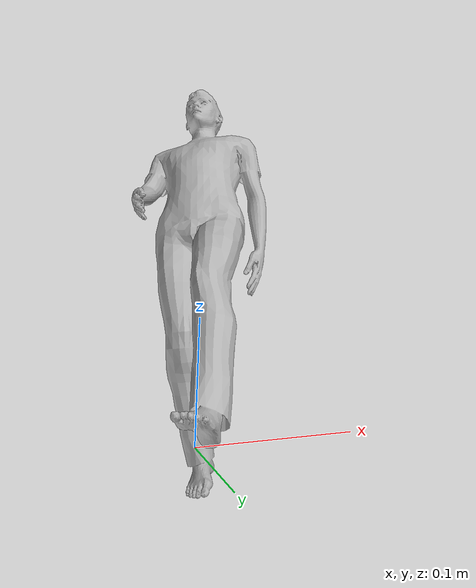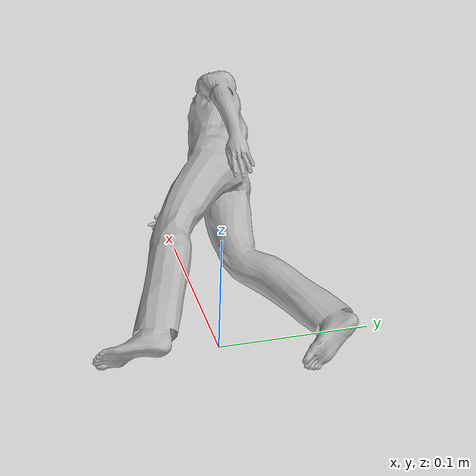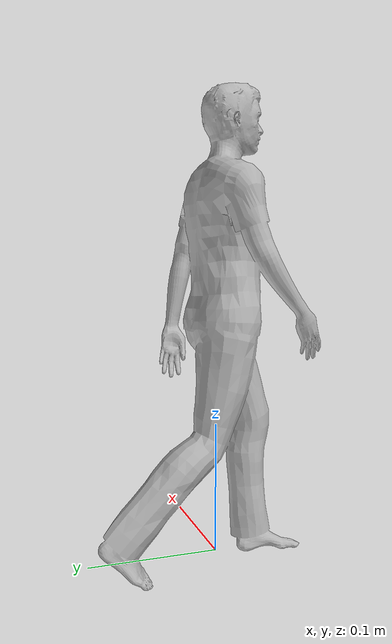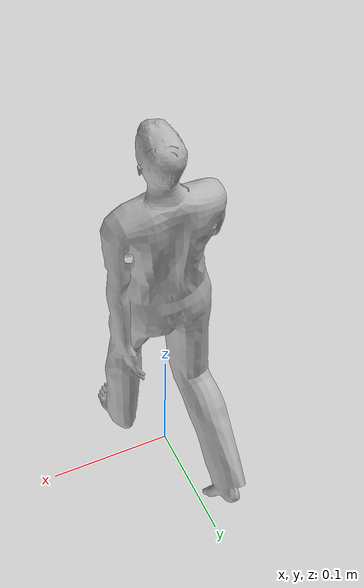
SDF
<?xml version="1.0"?>
<sdf version="1.5">
  <model name="person_walking">
    <static>true</static>
    <link name="link">
      <inertial>
        <pose>0 0 0.95 0 0 0</pose>
        <mass>80.0</mass>
        <inertia>
          <ixx>27.82</ixx>
          <ixy>0</ixy>
          <ixz>0</ixz>
          <iyy>24.88</iyy>
          <iyz>0</iyz>
          <izz>4.57</izz>
        </inertia>
      </inertial>
      <collision name="bottom">
        <pose>0 0 -0.02 0 0 0</pose>
        <geometry>
          <box>
            <size>0.35 0.75 0.05</size>
          </box>
        </geometry>
      </collision>
      <collision name="person">
        <pose>0 0 -0.02 0 0 0</pose>
        <geometry>
          <mesh>
            <uri>model://person_walking/meshes/walking.dae</uri>
            <scale>0.2 0.2 0.2</scale>
          </mesh>
        </geometry>
      </collision>
      <visual name="visual">
        <pose>0 0 -0.02 0 0 0</pose>
        <geometry>
          <mesh>
            <uri>model://person_walking/meshes/walking.dae</uri>
            <scale>0.2 0.2 0.2</scale>
          </mesh>
        </geometry>
      </visual>
    </link>
  </model>
</sdf>
